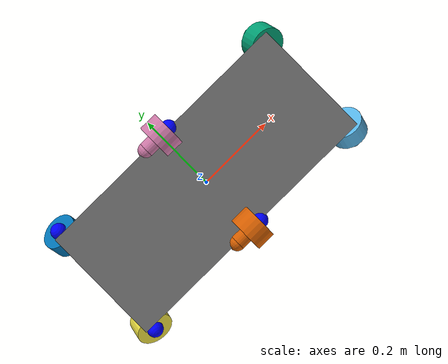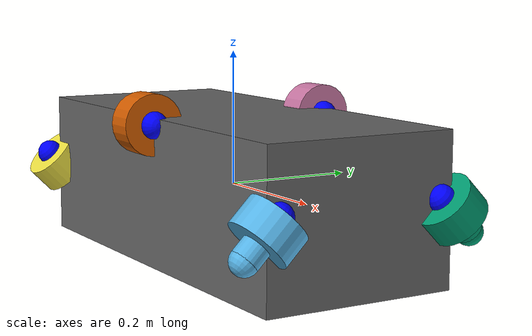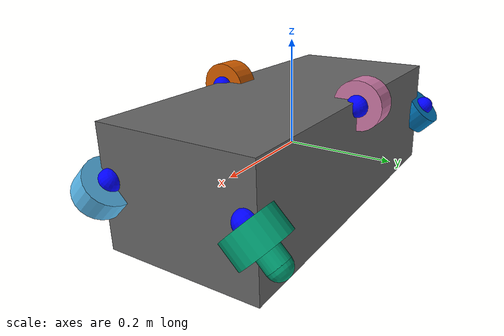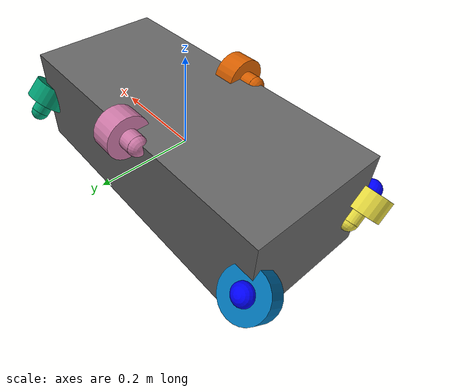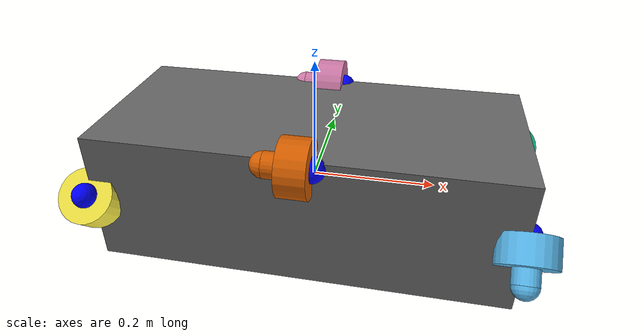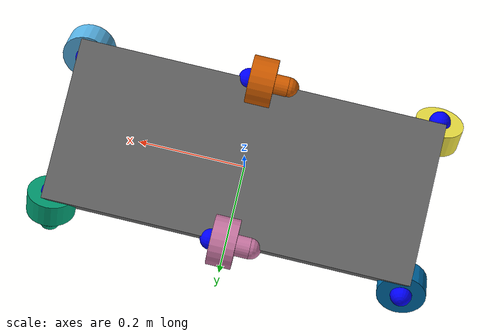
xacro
<?xml version="1.0"?>
<robot xmlns:xacro="http://ros.org/wiki/xacro" name="narval">

    <xacro:property name="PI" value="3.1415926535897931" />
    <xacro:property name="RAD" value="${PI*2}" />

    <xacro:property name="WIDTH" value="0.29" />
    <xacro:property name="HEIGHT" value="0.22" />
    <xacro:property name="LENGTH" value="0.662" />

    <xacro:property name="SET_ANGLE" value="45"/>
    <xacro:property name="THRUSTER_ANGLE" value="${SET_ANGLE * PI/180}" />
    <xacro:property name="MIDDLE_THRUSTER_Z" value="0.1" />

    <material name="gray">
        <color rgba="0.4 0.4 0.4 1.0" />
    </material>
    <material name="blue">
        <color rgba="0 0 1 1" />
    </material>
    <material name="red">
        <color rgba="1 0 0 1" />
    </material>
    <material name="black">
        <color rgba="0.0 0.0 0.0 1.0" />
    </material>

    <!-- Thruster macro -->
    <xacro:macro name="t200" params="side name *origin">
        <xacro:property name="THRUSTER_X_OFFSET" value="0" />
        <xacro:property name="THRUSTER_Y_OFFSET" value="0" />
        <xacro:property name="THRUSTER_Z_OFFSET" value="0.025" />

        <xacro:if value="${side == 'left'}">
            <xacro:property name="THRUSTER_X_OFFSET" value="0" />
            <xacro:property name="THRUSTER_Y_OFFSET" value="0.04" />
            <xacro:property name="THRUSTER_Z_OFFSET" value="0.025" />
        </xacro:if>
        <xacro:if value="${side == 'right'}">
            <xacro:property name="THRUSTER_X_OFFSET" value="0" />
            <xacro:property name="THRUSTER_Y_OFFSET" value="-0.04" />
            <xacro:property name="THRUSTER_Z_OFFSET" value="0.025" />
        </xacro:if>
        <link name="t200_link_${name}">
            <!-- Front cone -->
            <visual>
                <origin xyz="${THRUSTER_X_OFFSET} ${THRUSTER_Y_OFFSET} ${THRUSTER_Z_OFFSET}" />
                <geometry>
                    <sphere radius="0.02" />
                </geometry>
                <material name="blue" />
                <!-- All visual elements in this link pick up this material -->
            </visual>
            <!-- Rear cone -->
            <visual>
                <origin xyz="${THRUSTER_X_OFFSET} ${THRUSTER_Y_OFFSET} ${THRUSTER_Z_OFFSET -0.07}" />
                <geometry>
                    <sphere radius="0.02" />
                </geometry>
            </visual>
            <!-- Thruster body -->
            <visual>
                <origin xyz="${THRUSTER_X_OFFSET} ${THRUSTER_Y_OFFSET} ${THRUSTER_Z_OFFSET -0.035}" />
                <geometry>
                    <cylinder length="0.07" radius="0.02" />
                </geometry>
            </visual>
            <!-- Propeller guard -->
            <visual>
                <origin xyz="${THRUSTER_X_OFFSET} ${THRUSTER_Y_OFFSET} ${THRUSTER_Z_OFFSET -0.0225}" />
                <geometry>
                    <cylinder length="0.045" radius="0.045" />
                </geometry>
            </visual>
        </link>
        <joint name="t200_joint_${name}" type="fixed">
            <xacro:insert_block name="origin" />
            <parent link="base_link" />
            <child link="t200_link_${name}" />
        </joint>
    </xacro:macro>

    <!-- Thruster origins-->
    <xacro:property name="front_right_origin">
        <origin xyz="${LENGTH/2} ${-WIDTH/2} 0" rpy="${-THRUSTER_ANGLE} 0 0" />
    </xacro:property>
    <xacro:property name="front_left_origin">
        <origin xyz="${LENGTH/2} ${WIDTH/2} 0" rpy="${THRUSTER_ANGLE} 0 0" />
    </xacro:property>
    <xacro:property name="middle_right_origin">
        <origin xyz="0 ${-WIDTH/2} ${MIDDLE_THRUSTER_Z}" rpy="0 ${RAD/4} 0" />
    </xacro:property>
    <xacro:property name="middle_left_origin">
        <origin xyz="0 ${WIDTH/2} ${MIDDLE_THRUSTER_Z}" rpy="0 ${RAD/4} 0" />
    </xacro:property>
    <xacro:property name="rear_right_origin">
        <origin xyz="${-LENGTH/2} ${-WIDTH/2} 0" rpy="${THRUSTER_ANGLE} 0 0" />
    </xacro:property>
    <xacro:property name="rear_left_origin">
        <origin xyz="${-LENGTH/2} ${WIDTH/2} 0" rpy="${-THRUSTER_ANGLE} 0 0" />
    </xacro:property>

    <link name="base_link">
        <visual>
            <origin xyz="0 0 0"/>
            <geometry>
                <box size="${LENGTH} ${WIDTH} ${HEIGHT}" />
            </geometry>
            <material name="gray" />
        </visual>
    </link>

    <!-- Attach thrusters to the base_link -->
    <xacro:t200 name="front_right" side="none">
        <xacro:insert_block name="front_right_origin" />
    </xacro:t200>
    <xacro:t200 name="front_left" side="none">
        <xacro:insert_block name="front_left_origin" />
    </xacro:t200>
    <xacro:t200 name="rear_right" side="none">
        <xacro:insert_block name="rear_right_origin" />
    </xacro:t200>
    <xacro:t200 name="rear_left" side="none">
        <xacro:insert_block name="rear_left_origin" />
    </xacro:t200>
    <xacro:t200 name="middle_right" side="none">
        <xacro:insert_block name="middle_right_origin" />
    </xacro:t200>
    <xacro:t200 name="middle_left" side="none">
        <xacro:insert_block name="middle_left_origin" />
    </xacro:t200>

</robot>
